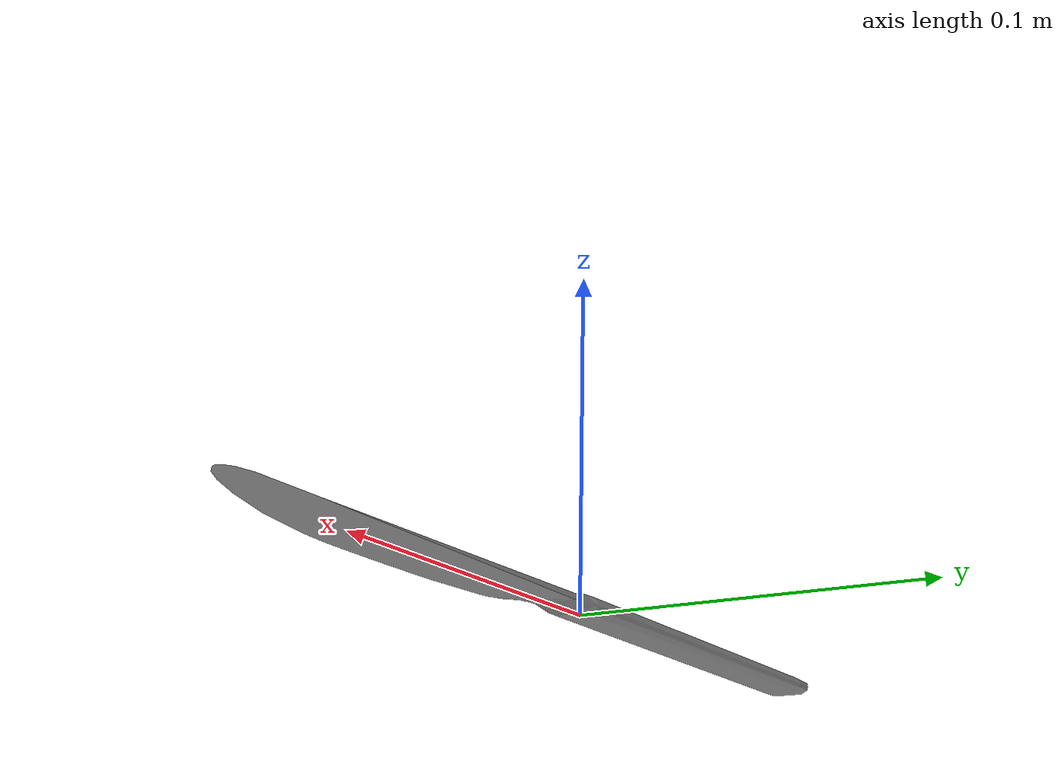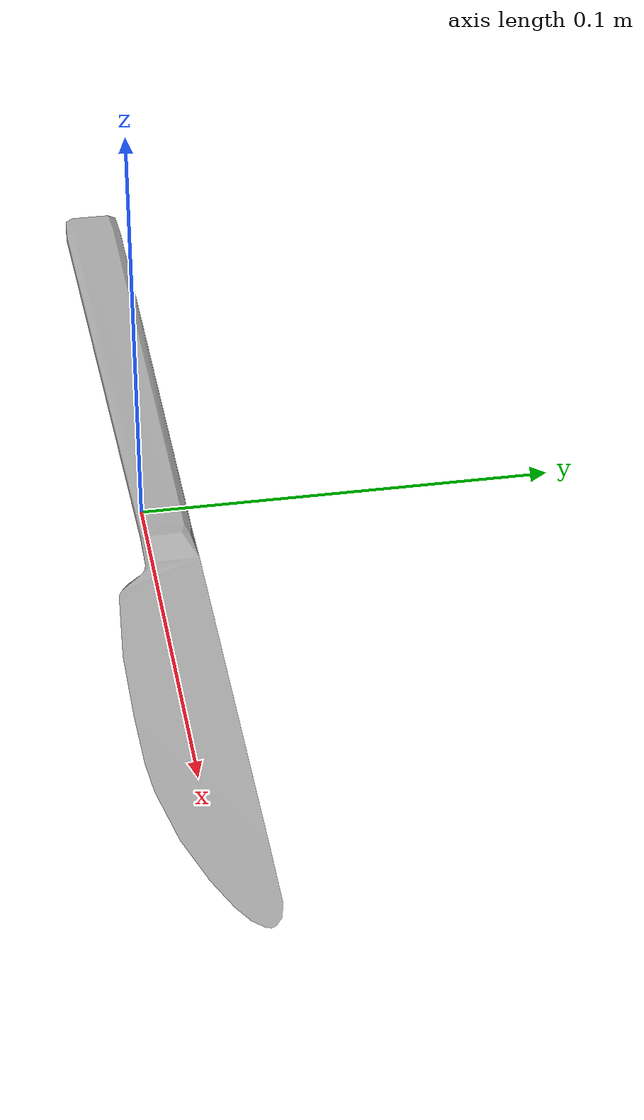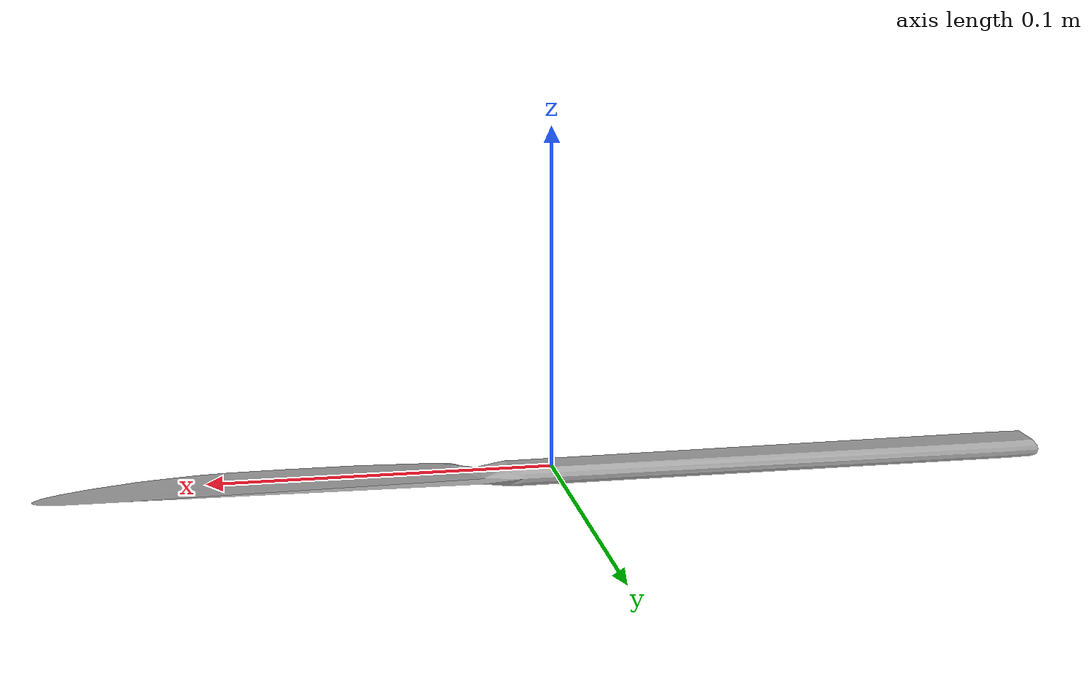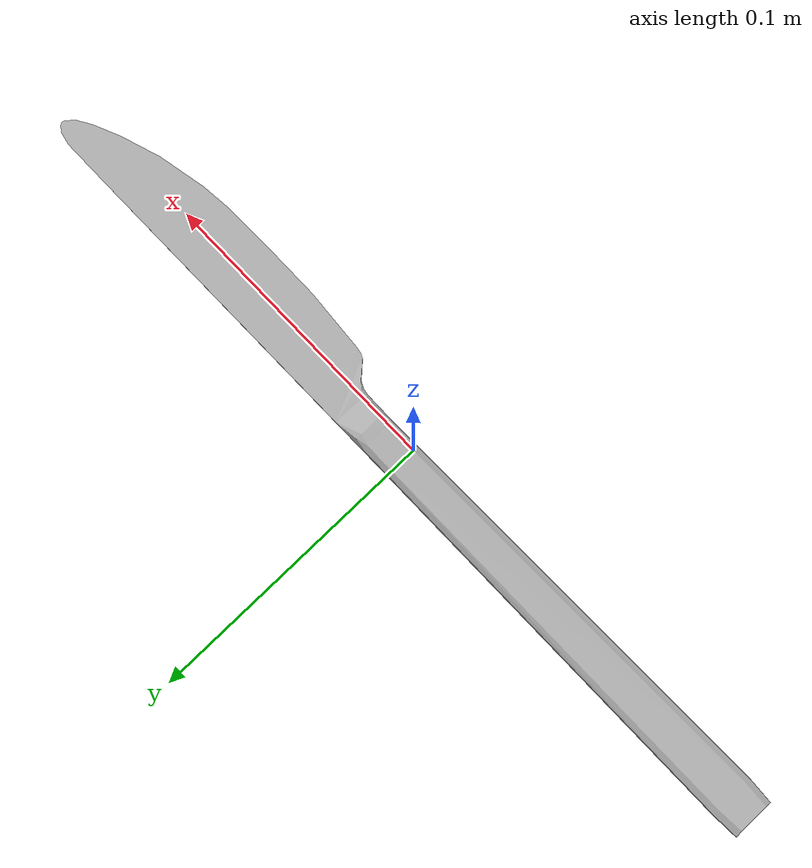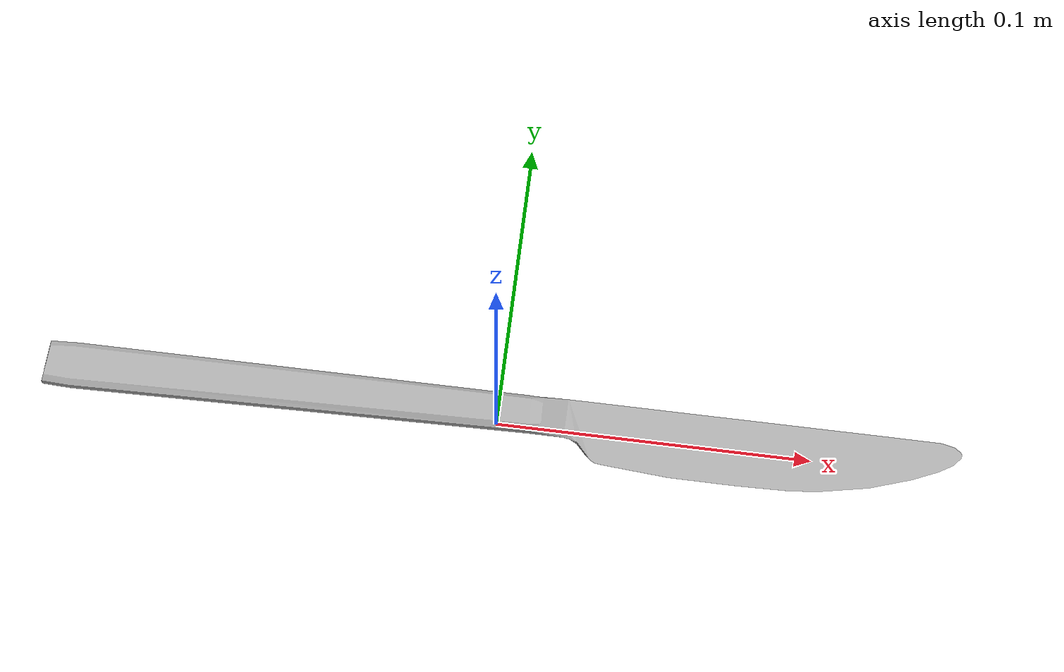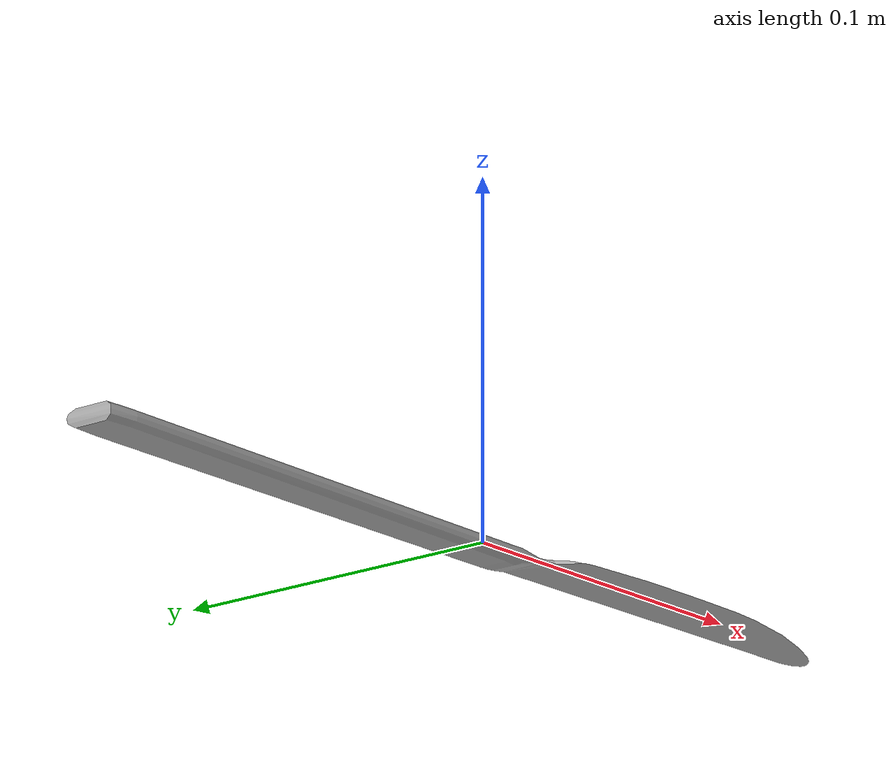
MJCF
<?xml version="1.0" ?>
<mujoco model="butter_knife">
	<compiler meshdir="butter_knife/meshes" texturedir="butter_knife/textures" angle="radian" autolimits="true" balanceinertia="true" boundmass="0.000001" boundinertia="0.000001"/>
	<default>
		<default class="visual">
			<geom contype="0" conaffinity="0"/>
		</default>
		<default class="collision">
			<geom rgba="1.0 0.0 0.0 0.0"/>
		</default>
	</default>
	<asset>
		<mesh name="ButterKnife" file="stl/ButterKnife.stl" scale="1.0 1.0 1.0"/>
		<mesh name="ButterKnife_001" file="stl/ButterKnife_001.stl" scale="1.0 1.0 1.0"/>
		<mesh name="ButterKnife_002" file="stl/ButterKnife_002.stl" scale="1.0 1.0 1.0"/>
		<material name="M_ButterKnife" rgba="0.6599000096321106 0.6599000096321106 0.6599000096321106 1.0" emission="0.0"/>
	</asset>
	<worldbody>
		<body name="butter_knife" pos="0.0 0.0 0.0" quat="1.0 0.0 0.0 0.0">
			<inertial mass="0.10201587527990341" pos="-0.039606545120477676 0.00357587868347764 -3.3749101291391526e-09" quat="0.9999185800552368 -7.314565095839498e-07 2.046870264393874e-07 -0.01276087760925293" diaginertia="2.9445216114254436e-06 0.0006860356661491096 0.000688666186761111"/>
			<geom name="ButterKnife" type="mesh" pos="0.0 0.0 0.0" quat="1.0 0.0 0.0 0.0" mesh="ButterKnife" material="M_ButterKnife" class="visual"/>
			<geom name="ButterKnife_001" type="mesh" pos="0.0 0.0 0.0" quat="1.0 0.0 0.0 0.0" mesh="ButterKnife_001" class="collision"/>
			<geom name="ButterKnife_002" type="mesh" pos="0.0 0.0 0.0" quat="1.0 0.0 0.0 0.0" mesh="ButterKnife_002" class="collision"/>
		</body>
	</worldbody>
	<equality/>
</mujoco>
